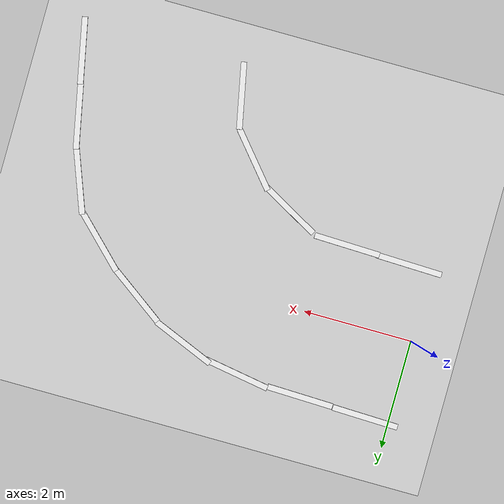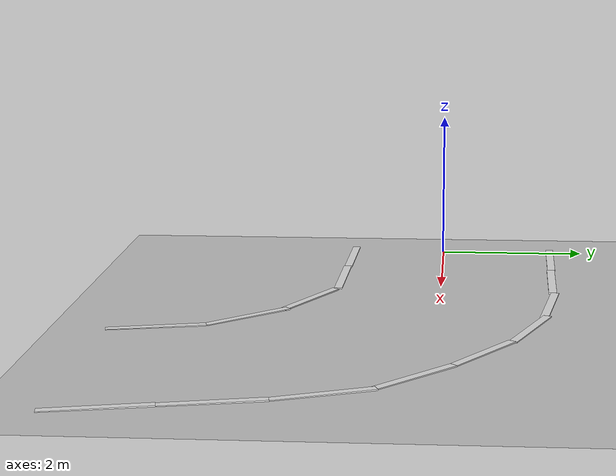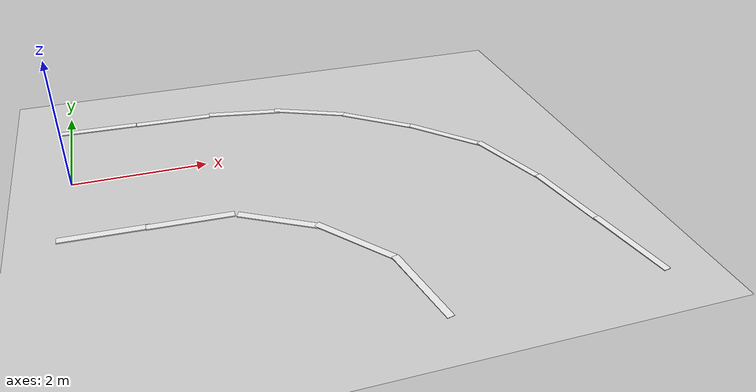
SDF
<sdf version="1.7">
 <world name="default">
  <model name="ground_plane">
   <static>1</static>
   <link name="link">
    <collision name="collision">
     <geometry><plane><normal>0 0 1</normal><size>100 100</size></plane></geometry>
     <surface>
      <contact><collide_bitmask>65535</collide_bitmask></contact>
      <friction><ode><mu>100</mu><mu2>50</mu2></ode></friction>
     </surface>
    </collision>
    <visual name="visual">
     <cast_shadows>0</cast_shadows>
     <geometry><plane><normal>0 0 1</normal><size>100 100</size></plane></geometry>
     <material>
      <script><uri>file://media/materials/scripts/gazebo.material</uri><name>Gazebo/Grey</name></script>
     </material>
    </visual>
   </link>
  </model>
  <model name="road_way">
   <link name="link">
    <inertial>
     <mass>2</mass>
     <inertia>
      <ixx>0.249647</ixx>
      <ixy>0</ixy>
      <ixz>0</ixz>
      <iyy>0.00205142</iyy>
      <iyz>0</iyz>
      <izz>0.251372</izz>
     </inertia>
    </inertial>
    <visual name="visual">
     <geometry><box><size>0.106644 1.22348 0.03129</size></box></geometry>
     <material>
      <script><name>Gazebo/White</name><uri>file://media/materials/scripts/gazebo.material</uri></script>
      <shader type="pixel"><normal_map>__default__</normal_map></shader>
      <ambient>1 1 1 1</ambient>
      <diffuse>1 1 1 1</diffuse>
      <specular>0 0 0 1</specular>
      <emissive>0 0 0 1</emissive>
     </material>
    </visual>
    <collision name="collision">
     <geometry><box><size>0.10644 1.22348 0.03129</size></box></geometry>
     <surface>
      <friction>
       <ode><mu>1</mu><mu2>1</mu2><fdir1>0 0 0</fdir1><slip1>0</slip1><slip2>0</slip2></ode>
       <torsional>
        <coefficient>1</coefficient>
        <patch_radius>0</patch_radius>
        <surface_radius>0</surface_radius>
        <use_patch_radius>1</use_patch_radius>
        <ode><slip>0</slip></ode>
       </torsional>
      </friction>
      <bounce><restitution_coefficient>0</restitution_coefficient><threshold>1e+06</threshold></bounce>
      <contact>
       <collide_without_contact>0</collide_without_contact>
       <collide_without_contact_bitmask>1</collide_without_contact_bitmask>
       <collide_bitmask>1</collide_bitmask>
       <ode>
        <soft_cfm>0</soft_cfm>
        <soft_erp>0.2</soft_erp>
        <kp>1e+13</kp>
        <kd>1</kd>
        <max_vel>0.01</max_vel>
        <min_depth>0</min_depth>
       </ode>
       <bullet>
        <split_impulse>1</split_impulse>
        <split_impulse_penetration_threshold>-0.01</split_impulse_penetration_threshold>
        <soft_cfm>0</soft_cfm>
        <soft_erp>0.2</soft_erp>
        <kp>1e+13</kp>
        <kd>1</kd>
       </bullet>
      </contact>
     </surface>
    </collision>
   </link>
   <static>0</static>
   <pose>0.431084 1.54511 -0.008736 -2.9e-05 0.005942 -1.5984</pose>
  </model>
  <model name="road_way_clone">
   <link name="link">
    <inertial>
     <mass>2</mass>
     <inertia>
      <ixx>0.249647</ixx>
      <ixy>0</ixy>
      <ixz>0</ixz>
      <iyy>0.00205142</iyy>
      <iyz>0</iyz>
      <izz>0.251372</izz>
     </inertia>
    </inertial>
    <visual name="visual">
     <geometry><box><size>0.106644 1.22348 0.03129</size></box></geometry>
     <material>
      <script><name>Gazebo/White</name><uri>file://media/materials/scripts/gazebo.material</uri></script>
      <shader type="pixel"><normal_map>__default__</normal_map></shader>
      <ambient>1 1 1 1</ambient>
      <diffuse>1 1 1 1</diffuse>
      <specular>0 0 0 1</specular>
      <emissive>0 0 0 1</emissive>
     </material>
    </visual>
    <collision name="collision">
     <geometry><box><size>0.10644 1.22348 0.03129</size></box></geometry>
     <surface>
      <friction>
       <ode><mu>1</mu><mu2>1</mu2><fdir1>0 0 0</fdir1><slip1>0</slip1><slip2>0</slip2></ode>
       <torsional>
        <coefficient>1</coefficient>
        <patch_radius>0</patch_radius>
        <surface_radius>0</surface_radius>
        <use_patch_radius>1</use_patch_radius>
        <ode><slip>0</slip></ode>
       </torsional>
      </friction>
      <bounce><restitution_coefficient>0</restitution_coefficient><threshold>1e+06</threshold></bounce>
      <contact>
       <collide_without_contact>0</collide_without_contact>
       <collide_without_contact_bitmask>1</collide_without_contact_bitmask>
       <collide_bitmask>1</collide_bitmask>
       <ode>
        <soft_cfm>0</soft_cfm>
        <soft_erp>0.2</soft_erp>
        <kp>1e+13</kp>
        <kd>1</kd>
        <max_vel>0.01</max_vel>
        <min_depth>0</min_depth>
       </ode>
       <bullet>
        <split_impulse>1</split_impulse>
        <split_impulse_penetration_threshold>-0.01</split_impulse_penetration_threshold>
        <soft_cfm>0</soft_cfm>
        <soft_erp>0.2</soft_erp>
        <kp>1e+13</kp>
        <kd>1</kd>
       </bullet>
      </contact>
     </surface>
    </collision>
   </link>
   <static>0</static>
   <pose>1.66209 1.50191 -0.008736 -2.9e-05 0.005942 -1.5984</pose>
  </model>
  <model name="road_way_clone_0">
   <link name="link">
    <inertial>
     <mass>2</mass>
     <inertia>
      <ixx>0.249647</ixx>
      <ixy>0</ixy>
      <ixz>0</ixz>
      <iyy>0.00205142</iyy>
      <iyz>0</iyz>
      <izz>0.251372</izz>
     </inertia>
    </inertial>
    <visual name="visual">
     <geometry><box><size>0.106644 1.22348 0.03129</size></box></geometry>
     <material>
      <script><name>Gazebo/White</name><uri>file://media/materials/scripts/gazebo.material</uri></script>
      <shader type="pixel"><normal_map>__default__</normal_map></shader>
      <ambient>1 1 1 1</ambient>
      <diffuse>1 1 1 1</diffuse>
      <specular>0 0 0 1</specular>
      <emissive>0 0 0 1</emissive>
     </material>
    </visual>
    <collision name="collision">
     <geometry><box><size>0.10644 1.22348 0.03129</size></box></geometry>
     <surface>
      <friction>
       <ode><mu>1</mu><mu2>1</mu2><fdir1>0 0 0</fdir1><slip1>0</slip1><slip2>0</slip2></ode>
       <torsional>
        <coefficient>1</coefficient>
        <patch_radius>0</patch_radius>
        <surface_radius>0</surface_radius>
        <use_patch_radius>1</use_patch_radius>
        <ode><slip>0</slip></ode>
       </torsional>
      </friction>
      <bounce><restitution_coefficient>0</restitution_coefficient><threshold>1e+06</threshold></bounce>
      <contact>
       <collide_without_contact>0</collide_without_contact>
       <collide_without_contact_bitmask>1</collide_without_contact_bitmask>
       <collide_bitmask>1</collide_bitmask>
       <ode>
        <soft_cfm>0</soft_cfm>
        <soft_erp>0.2</soft_erp>
        <kp>1e+13</kp>
        <kd>1</kd>
        <max_vel>0.01</max_vel>
        <min_depth>0</min_depth>
       </ode>
       <bullet>
        <split_impulse>1</split_impulse>
        <split_impulse_penetration_threshold>-0.01</split_impulse_penetration_threshold>
        <soft_cfm>0</soft_cfm>
        <soft_erp>0.2</soft_erp>
        <kp>1e+13</kp>
        <kd>1</kd>
       </bullet>
      </contact>
     </surface>
    </collision>
   </link>
   <static>0</static>
   <pose>2.87691 1.41323 -0.008974 -0.000849 0.005881 -1.73695</pose>
  </model>
  <model name="road_way_clone_0_clone">
   <link name="link">
    <inertial>
     <mass>2</mass>
     <inertia>
      <ixx>0.249647</ixx>
      <ixy>0</ixy>
      <ixz>0</ixz>
      <iyy>0.00205142</iyy>
      <iyz>0</iyz>
      <izz>0.251372</izz>
     </inertia>
    </inertial>
    <visual name="visual">
     <geometry><box><size>0.106644 1.22348 0.03129</size></box></geometry>
     <material>
      <script><name>Gazebo/White</name><uri>file://media/materials/scripts/gazebo.material</uri></script>
      <shader type="pixel"><normal_map>__default__</normal_map></shader>
      <ambient>1 1 1 1</ambient>
      <diffuse>1 1 1 1</diffuse>
      <specular>0 0 0 1</specular>
      <emissive>0 0 0 1</emissive>
     </material>
    </visual>
    <collision name="collision">
     <geometry><box><size>0.10644 1.22348 0.03129</size></box></geometry>
     <surface>
      <friction>
       <ode><mu>1</mu><mu2>1</mu2><fdir1>0 0 0</fdir1><slip1>0</slip1><slip2>0</slip2></ode>
       <torsional>
        <coefficient>1</coefficient>
        <patch_radius>0</patch_radius>
        <surface_radius>0</surface_radius>
        <use_patch_radius>1</use_patch_radius>
        <ode><slip>0</slip></ode>
       </torsional>
      </friction>
      <bounce><restitution_coefficient>0</restitution_coefficient><threshold>1e+06</threshold></bounce>
      <contact>
       <collide_without_contact>0</collide_without_contact>
       <collide_without_contact_bitmask>1</collide_without_contact_bitmask>
       <collide_bitmask>1</collide_bitmask>
       <ode>
        <soft_cfm>0</soft_cfm>
        <soft_erp>0.2</soft_erp>
        <kp>1e+13</kp>
        <kd>1</kd>
        <max_vel>0.01</max_vel>
        <min_depth>0</min_depth>
       </ode>
       <bullet>
        <split_impulse>1</split_impulse>
        <split_impulse_penetration_threshold>-0.01</split_impulse_penetration_threshold>
        <soft_cfm>0</soft_cfm>
        <soft_erp>0.2</soft_erp>
        <kp>1e+13</kp>
        <kd>1</kd>
       </bullet>
      </contact>
     </surface>
    </collision>
   </link>
   <static>0</static>
   <pose>3.95765 1.12805 -0.010505 -0.002138 0.005544 -1.96162</pose>
  </model>
  <model name="road_way_clone_1">
   <link name="link">
    <inertial>
     <mass>2</mass>
     <inertia>
      <ixx>0.249647</ixx>
      <ixy>0</ixy>
      <ixz>0</ixz>
      <iyy>0.00205142</iyy>
      <iyz>0</iyz>
      <izz>0.251372</izz>
     </inertia>
    </inertial>
    <visual name="visual">
     <geometry><box><size>0.106644 1.22348 0.03129</size></box></geometry>
     <material>
      <script><name>Gazebo/White</name><uri>file://media/materials/scripts/gazebo.material</uri></script>
      <shader type="pixel"><normal_map>__default__</normal_map></shader>
      <ambient>1 1 1 1</ambient>
      <diffuse>1 1 1 1</diffuse>
      <specular>0 0 0 1</specular>
      <emissive>0 0 0 1</emissive>
     </material>
    </visual>
    <collision name="collision">
     <geometry><box><size>0.10644 1.22348 0.03129</size></box></geometry>
     <surface>
      <friction>
       <ode><mu>1</mu><mu2>1</mu2><fdir1>0 0 0</fdir1><slip1>0</slip1><slip2>0</slip2></ode>
       <torsional>
        <coefficient>1</coefficient>
        <patch_radius>0</patch_radius>
        <surface_radius>0</surface_radius>
        <use_patch_radius>1</use_patch_radius>
        <ode><slip>0</slip></ode>
       </torsional>
      </friction>
      <bounce><restitution_coefficient>0</restitution_coefficient><threshold>1e+06</threshold></bounce>
      <contact>
       <collide_without_contact>0</collide_without_contact>
       <collide_without_contact_bitmask>1</collide_without_contact_bitmask>
       <collide_bitmask>1</collide_bitmask>
       <ode>
        <soft_cfm>0</soft_cfm>
        <soft_erp>0.2</soft_erp>
        <kp>1e+13</kp>
        <kd>1</kd>
        <max_vel>0.01</max_vel>
        <min_depth>0</min_depth>
       </ode>
       <bullet>
        <split_impulse>1</split_impulse>
        <split_impulse_penetration_threshold>-0.01</split_impulse_penetration_threshold>
        <soft_cfm>0</soft_cfm>
        <soft_erp>0.2</soft_erp>
        <kp>1e+13</kp>
        <kd>1</kd>
       </bullet>
      </contact>
     </surface>
    </collision>
   </link>
   <static>0</static>
   <pose>0.403234 -1.31676 -0.007594 -2.9e-05 0.005942 -1.5984</pose>
  </model>
  <model name="road_way_clone_2">
   <link name="link">
    <inertial>
     <mass>2</mass>
     <inertia>
      <ixx>0.249647</ixx>
      <ixy>0</ixy>
      <ixz>0</ixz>
      <iyy>0.00205142</iyy>
      <iyz>0</iyz>
      <izz>0.251372</izz>
     </inertia>
    </inertial>
    <visual name="visual">
     <geometry><box><size>0.106644 1.22348 0.03129</size></box></geometry>
     <material>
      <script><name>Gazebo/White</name><uri>file://media/materials/scripts/gazebo.material</uri></script>
      <shader type="pixel"><normal_map>__default__</normal_map></shader>
      <ambient>1 1 1 1</ambient>
      <diffuse>1 1 1 1</diffuse>
      <specular>0 0 0 1</specular>
      <emissive>0 0 0 1</emissive>
     </material>
    </visual>
    <collision name="collision">
     <geometry><box><size>0.10644 1.22348 0.03129</size></box></geometry>
     <surface>
      <friction>
       <ode><mu>1</mu><mu2>1</mu2><fdir1>0 0 0</fdir1><slip1>0</slip1><slip2>0</slip2></ode>
       <torsional>
        <coefficient>1</coefficient>
        <patch_radius>0</patch_radius>
        <surface_radius>0</surface_radius>
        <use_patch_radius>1</use_patch_radius>
        <ode><slip>0</slip></ode>
       </torsional>
      </friction>
      <bounce><restitution_coefficient>0</restitution_coefficient><threshold>1e+06</threshold></bounce>
      <contact>
       <collide_without_contact>0</collide_without_contact>
       <collide_without_contact_bitmask>1</collide_without_contact_bitmask>
       <collide_bitmask>1</collide_bitmask>
       <ode>
        <soft_cfm>0</soft_cfm>
        <soft_erp>0.2</soft_erp>
        <kp>1e+13</kp>
        <kd>1</kd>
        <max_vel>0.01</max_vel>
        <min_depth>0</min_depth>
       </ode>
       <bullet>
        <split_impulse>1</split_impulse>
        <split_impulse_penetration_threshold>-0.01</split_impulse_penetration_threshold>
        <soft_cfm>0</soft_cfm>
        <soft_erp>0.2</soft_erp>
        <kp>1e+13</kp>
        <kd>1</kd>
       </bullet>
      </contact>
     </surface>
    </collision>
   </link>
   <static>0</static>
   <pose>1.57672 -1.35874 -0.007665 -2.9e-05 0.005942 -1.5984</pose>
  </model>
  <model name="road_way_clone_0_clone_1">
   <link name="link">
    <inertial>
     <mass>2</mass>
     <inertia>
      <ixx>0.249647</ixx>
      <ixy>0</ixy>
      <ixz>0</ixz>
      <iyy>0.00205142</iyy>
      <iyz>0</iyz>
      <izz>0.251372</izz>
     </inertia>
    </inertial>
    <visual name="visual">
     <geometry><box><size>0.106644 1.22348 0.03129</size></box></geometry>
     <material>
      <script><name>Gazebo/White</name><uri>file://media/materials/scripts/gazebo.material</uri></script>
      <shader type="pixel"><normal_map>__default__</normal_map></shader>
      <ambient>1 1 1 1</ambient>
      <diffuse>1 1 1 1</diffuse>
      <specular>0 0 0 1</specular>
      <emissive>0 0 0 1</emissive>
     </material>
    </visual>
    <collision name="collision">
     <geometry><box><size>0.10644 1.22348 0.03129</size></box></geometry>
     <surface>
      <friction>
       <ode><mu>1</mu><mu2>1</mu2><fdir1>0 0 0</fdir1><slip1>0</slip1><slip2>0</slip2></ode>
       <torsional>
        <coefficient>1</coefficient>
        <patch_radius>0</patch_radius>
        <surface_radius>0</surface_radius>
        <use_patch_radius>1</use_patch_radius>
        <ode><slip>0</slip></ode>
       </torsional>
      </friction>
      <bounce><restitution_coefficient>0</restitution_coefficient><threshold>1e+06</threshold></bounce>
      <contact>
       <collide_without_contact>0</collide_without_contact>
       <collide_without_contact_bitmask>1</collide_without_contact_bitmask>
       <collide_bitmask>1</collide_bitmask>
       <ode>
        <soft_cfm>0</soft_cfm>
        <soft_erp>0.2</soft_erp>
        <kp>1e+13</kp>
        <kd>1</kd>
        <max_vel>0.01</max_vel>
        <min_depth>0</min_depth>
       </ode>
       <bullet>
        <split_impulse>1</split_impulse>
        <split_impulse_penetration_threshold>-0.01</split_impulse_penetration_threshold>
        <soft_cfm>0</soft_cfm>
        <soft_erp>0.2</soft_erp>
        <kp>1e+13</kp>
        <kd>1</kd>
       </bullet>
      </contact>
     </surface>
    </collision>
   </link>
   <static>0</static>
   <pose>2.75807 -1.69935 -0.008905 -0.002769 0.005258 -2.07828</pose>
  </model>
  <model name="road_way_clone_0_clone_clone">
   <link name="link">
    <inertial>
     <mass>2</mass>
     <inertia>
      <ixx>0.249647</ixx>
      <ixy>0</ixy>
      <ixz>0</ixz>
      <iyy>0.00205142</iyy>
      <iyz>0</iyz>
      <izz>0.251372</izz>
     </inertia>
    </inertial>
    <visual name="visual">
     <geometry><box><size>0.106644 1.22348 0.03129</size></box></geometry>
     <material>
      <script><name>Gazebo/White</name><uri>file://media/materials/scripts/gazebo.material</uri></script>
      <shader type="pixel"><normal_map>__default__</normal_map></shader>
      <ambient>1 1 1 1</ambient>
      <diffuse>1 1 1 1</diffuse>
      <specular>0 0 0 1</specular>
      <emissive>0 0 0 1</emissive>
     </material>
    </visual>
    <collision name="collision">
     <geometry><box><size>0.10644 1.22348 0.03129</size></box></geometry>
     <surface>
      <friction>
       <ode><mu>1</mu><mu2>1</mu2><fdir1>0 0 0</fdir1><slip1>0</slip1><slip2>0</slip2></ode>
       <torsional>
        <coefficient>1</coefficient>
        <patch_radius>0</patch_radius>
        <surface_radius>0</surface_radius>
        <use_patch_radius>1</use_patch_radius>
        <ode><slip>0</slip></ode>
       </torsional>
      </friction>
      <bounce><restitution_coefficient>0</restitution_coefficient><threshold>1e+06</threshold></bounce>
      <contact>
       <collide_without_contact>0</collide_without_contact>
       <collide_without_contact_bitmask>1</collide_without_contact_bitmask>
       <collide_bitmask>1</collide_bitmask>
       <ode>
        <soft_cfm>0</soft_cfm>
        <soft_erp>0.2</soft_erp>
        <kp>1e+13</kp>
        <kd>1</kd>
        <max_vel>0.01</max_vel>
        <min_depth>0</min_depth>
       </ode>
       <bullet>
        <split_impulse>1</split_impulse>
        <split_impulse_penetration_threshold>-0.01</split_impulse_penetration_threshold>
        <soft_cfm>0</soft_cfm>
        <soft_erp>0.2</soft_erp>
        <kp>1e+13</kp>
        <kd>1</kd>
       </bullet>
      </contact>
     </surface>
    </collision>
   </link>
   <static>0</static>
   <pose>3.61851 -2.39475 -0.012542 -0.004454 0.003933 -2.44103</pose>
  </model>
  <model name="road_way_clone_0_clone_clone_0">
   <link name="link">
    <inertial>
     <mass>2</mass>
     <inertia>
      <ixx>0.249647</ixx>
      <ixy>0</ixy>
      <ixz>0</ixz>
      <iyy>0.00205142</iyy>
      <iyz>0</iyz>
      <izz>0.251372</izz>
     </inertia>
    </inertial>
    <visual name="visual">
     <geometry><box><size>0.106644 1.22348 0.03129</size></box></geometry>
     <material>
      <script><name>Gazebo/White</name><uri>file://media/materials/scripts/gazebo.material</uri></script>
      <shader type="pixel"><normal_map>__default__</normal_map></shader>
      <ambient>1 1 1 1</ambient>
      <diffuse>1 1 1 1</diffuse>
      <specular>0 0 0 1</specular>
      <emissive>0 0 0 1</emissive>
     </material>
    </visual>
    <collision name="collision">
     <geometry><box><size>0.10644 1.22348 0.03129</size></box></geometry>
     <surface>
      <friction>
       <ode><mu>1</mu><mu2>1</mu2><fdir1>0 0 0</fdir1><slip1>0</slip1><slip2>0</slip2></ode>
       <torsional>
        <coefficient>1</coefficient>
        <patch_radius>0</patch_radius>
        <surface_radius>0</surface_radius>
        <use_patch_radius>1</use_patch_radius>
        <ode><slip>0</slip></ode>
       </torsional>
      </friction>
      <bounce><restitution_coefficient>0</restitution_coefficient><threshold>1e+06</threshold></bounce>
      <contact>
       <collide_without_contact>0</collide_without_contact>
       <collide_without_contact_bitmask>1</collide_without_contact_bitmask>
       <collide_bitmask>1</collide_bitmask>
       <ode>
        <soft_cfm>0</soft_cfm>
        <soft_erp>0.2</soft_erp>
        <kp>1e+13</kp>
        <kd>1</kd>
        <max_vel>0.01</max_vel>
        <min_depth>0</min_depth>
       </ode>
       <bullet>
        <split_impulse>1</split_impulse>
        <split_impulse_penetration_threshold>-0.01</split_impulse_penetration_threshold>
        <soft_cfm>0</soft_cfm>
        <soft_erp>0.2</soft_erp>
        <kp>1e+13</kp>
        <kd>1</kd>
       </bullet>
      </contact>
     </surface>
    </collision>
   </link>
   <static>0</static>
   <pose>5.00171 0.532634 -0.010505 -0.003349 0.004909 -2.19222</pose>
  </model>
  <model name="road_way_clone_0_clone_clone_2">
   <link name="link">
    <inertial>
     <mass>2</mass>
     <inertia>
      <ixx>0.249647</ixx>
      <ixy>0</ixy>
      <ixz>0</ixz>
      <iyy>0.00205142</iyy>
      <iyz>0</iyz>
      <izz>0.251372</izz>
     </inertia>
    </inertial>
    <visual name="visual">
     <geometry><box><size>0.106644 1.22348 0.03129</size></box></geometry>
     <material>
      <script><name>Gazebo/White</name><uri>file://media/materials/scripts/gazebo.material</uri></script>
      <shader type="pixel"><normal_map>__default__</normal_map></shader>
      <ambient>1 1 1 1</ambient>
      <diffuse>1 1 1 1</diffuse>
      <specular>0 0 0 1</specular>
      <emissive>0 0 0 1</emissive>
     </material>
    </visual>
    <collision name="collision">
     <geometry><box><size>0.10644 1.22348 0.03129</size></box></geometry>
     <surface>
      <friction>
       <ode><mu>1</mu><mu2>1</mu2><fdir1>0 0 0</fdir1><slip1>0</slip1><slip2>0</slip2></ode>
       <torsional>
        <coefficient>1</coefficient>
        <patch_radius>0</patch_radius>
        <surface_radius>0</surface_radius>
        <use_patch_radius>1</use_patch_radius>
        <ode><slip>0</slip></ode>
       </torsional>
      </friction>
      <bounce><restitution_coefficient>0</restitution_coefficient><threshold>1e+06</threshold></bounce>
      <contact>
       <collide_without_contact>0</collide_without_contact>
       <collide_without_contact_bitmask>1</collide_without_contact_bitmask>
       <collide_bitmask>1</collide_bitmask>
       <ode>
        <soft_cfm>0</soft_cfm>
        <soft_erp>0.2</soft_erp>
        <kp>1e+13</kp>
        <kd>1</kd>
        <max_vel>0.01</max_vel>
        <min_depth>0</min_depth>
       </ode>
       <bullet>
        <split_impulse>1</split_impulse>
        <split_impulse_penetration_threshold>-0.01</split_impulse_penetration_threshold>
        <soft_cfm>0</soft_cfm>
        <soft_erp>0.2</soft_erp>
        <kp>1e+13</kp>
        <kd>1</kd>
       </bullet>
      </contact>
     </surface>
    </collision>
   </link>
   <static>0</static>
   <pose>5.90401 -0.221652 -0.011445 -0.004069 0.00433 -2.34793</pose>
  </model>
  <model name="road_way_clone_0_clone_clone_3">
   <link name="link">
    <inertial>
     <mass>2</mass>
     <inertia>
      <ixx>0.249647</ixx>
      <ixy>0</ixy>
      <ixz>0</ixz>
      <iyy>0.00205142</iyy>
      <iyz>0</iyz>
      <izz>0.251372</izz>
     </inertia>
    </inertial>
    <visual name="visual">
     <geometry><box><size>0.106644 1.22348 0.03129</size></box></geometry>
     <material>
      <script><name>Gazebo/White</name><uri>file://media/materials/scripts/gazebo.material</uri></script>
      <shader type="pixel"><normal_map>__default__</normal_map></shader>
      <ambient>1 1 1 1</ambient>
      <diffuse>1 1 1 1</diffuse>
      <specular>0 0 0 1</specular>
      <emissive>0 0 0 1</emissive>
     </material>
    </visual>
    <collision name="collision">
     <geometry><box><size>0.10644 1.22348 0.03129</size></box></geometry>
     <surface>
      <friction>
       <ode><mu>1</mu><mu2>1</mu2><fdir1>0 0 0</fdir1><slip1>0</slip1><slip2>0</slip2></ode>
       <torsional>
        <coefficient>1</coefficient>
        <patch_radius>0</patch_radius>
        <surface_radius>0</surface_radius>
        <use_patch_radius>1</use_patch_radius>
        <ode><slip>0</slip></ode>
       </torsional>
      </friction>
      <bounce><restitution_coefficient>0</restitution_coefficient><threshold>1e+06</threshold></bounce>
      <contact>
       <collide_without_contact>0</collide_without_contact>
       <collide_without_contact_bitmask>1</collide_without_contact_bitmask>
       <collide_bitmask>1</collide_bitmask>
       <ode>
        <soft_cfm>0</soft_cfm>
        <soft_erp>0.2</soft_erp>
        <kp>1e+13</kp>
        <kd>1</kd>
        <max_vel>0.01</max_vel>
        <min_depth>0</min_depth>
       </ode>
       <bullet>
        <split_impulse>1</split_impulse>
        <split_impulse_penetration_threshold>-0.01</split_impulse_penetration_threshold>
        <soft_cfm>0</soft_cfm>
        <soft_erp>0.2</soft_erp>
        <kp>1e+13</kp>
        <kd>1</kd>
       </bullet>
      </contact>
     </surface>
    </collision>
   </link>
   <static>0</static>
   <pose>6.54964 -1.18329 -0.011961 -0.005514 0.002214 -2.78258</pose>
  </model>
  <model name="road_way_clone_0_clone_clone_1_clone">
   <link name="link">
    <inertial>
     <mass>2</mass>
     <inertia>
      <ixx>0.249647</ixx>
      <ixy>0</ixy>
      <ixz>0</ixz>
      <iyy>0.00205142</iyy>
      <iyz>0</iyz>
      <izz>0.251372</izz>
     </inertia>
    </inertial>
    <visual name="visual">
     <geometry><box><size>0.106644 1.22348 0.03129</size></box></geometry>
     <material>
      <script><name>Gazebo/White</name><uri>file://media/materials/scripts/gazebo.material</uri></script>
      <shader type="pixel"><normal_map>__default__</normal_map></shader>
      <ambient>1 1 1 1</ambient>
      <diffuse>1 1 1 1</diffuse>
      <specular>0 0 0 1</specular>
      <emissive>0 0 0 1</emissive>
     </material>
    </visual>
    <collision name="collision">
     <geometry><box><size>0.10644 1.22348 0.03129</size></box></geometry>
     <surface>
      <friction>
       <ode><mu>1</mu><mu2>1</mu2><fdir1>0 0 0</fdir1><slip1>0</slip1><slip2>0</slip2></ode>
       <torsional>
        <coefficient>1</coefficient>
        <patch_radius>0</patch_radius>
        <surface_radius>0</surface_radius>
        <use_patch_radius>1</use_patch_radius>
        <ode><slip>0</slip></ode>
       </torsional>
      </friction>
      <bounce><restitution_coefficient>0</restitution_coefficient><threshold>1e+06</threshold></bounce>
      <contact>
       <collide_without_contact>0</collide_without_contact>
       <collide_without_contact_bitmask>1</collide_without_contact_bitmask>
       <collide_bitmask>1</collide_bitmask>
       <ode>
        <soft_cfm>0</soft_cfm>
        <soft_erp>0.2</soft_erp>
        <kp>1e+13</kp>
        <kd>1</kd>
        <max_vel>0.01</max_vel>
        <min_depth>0</min_depth>
       </ode>
       <bullet>
        <split_impulse>1</split_impulse>
        <split_impulse_penetration_threshold>-0.01</split_impulse_penetration_threshold>
        <soft_cfm>0</soft_cfm>
        <soft_erp>0.2</soft_erp>
        <kp>1e+13</kp>
        <kd>1</kd>
       </bullet>
      </contact>
     </surface>
    </collision>
   </link>
   <static>0</static>
   <pose>6.88079 -2.31425 -0.012528 -0.005792 0.001324 -2.93966</pose>
  </model>
  <model name="road_way_clone_0_clone_clone_1_clone_clone_0">
   <link name="link">
    <inertial>
     <mass>2</mass>
     <inertia>
      <ixx>0.249647</ixx>
      <ixy>0</ixy>
      <ixz>0</ixz>
      <iyy>0.00205142</iyy>
      <iyz>0</iyz>
      <izz>0.251372</izz>
     </inertia>
    </inertial>
    <visual name="visual">
     <geometry><box><size>0.106644 1.22348 0.03129</size></box></geometry>
     <material>
      <script><name>Gazebo/White</name><uri>file://media/materials/scripts/gazebo.material</uri></script>
      <shader type="pixel"><normal_map>__default__</normal_map></shader>
      <ambient>1 1 1 1</ambient>
      <diffuse>1 1 1 1</diffuse>
      <specular>0 0 0 1</specular>
      <emissive>0 0 0 1</emissive>
     </material>
    </visual>
    <collision name="collision">
     <geometry><box><size>0.10644 1.22348 0.03129</size></box></geometry>
     <surface>
      <friction>
       <ode><mu>1</mu><mu2>1</mu2><fdir1>0 0 0</fdir1><slip1>0</slip1><slip2>0</slip2></ode>
       <torsional>
        <coefficient>1</coefficient>
        <patch_radius>0</patch_radius>
        <surface_radius>0</surface_radius>
        <use_patch_radius>1</use_patch_radius>
        <ode><slip>0</slip></ode>
       </torsional>
      </friction>
      <bounce><restitution_coefficient>0</restitution_coefficient><threshold>1e+06</threshold></bounce>
      <contact>
       <collide_without_contact>0</collide_without_contact>
       <collide_without_contact_bitmask>1</collide_without_contact_bitmask>
       <collide_bitmask>1</collide_bitmask>
       <ode>
        <soft_cfm>0</soft_cfm>
        <soft_erp>0.2</soft_erp>
        <kp>1e+13</kp>
        <kd>1</kd>
        <max_vel>0.01</max_vel>
        <min_depth>0</min_depth>
       </ode>
       <bullet>
        <split_impulse>1</split_impulse>
        <split_impulse_penetration_threshold>-0.01</split_impulse_penetration_threshold>
        <soft_cfm>0</soft_cfm>
        <soft_erp>0.2</soft_erp>
        <kp>1e+13</kp>
        <kd>1</kd>
       </bullet>
      </contact>
     </surface>
    </collision>
   </link>
   <static>0</static>
   <pose>7.12211 -3.4658 -0.012528 -0.005792 0.001324 -2.93966</pose>
  </model>
  <model name="road_way_clone_0_clone_clone_1_clone_clone_clone">
   <link name="link">
    <inertial>
     <mass>2</mass>
     <inertia>
      <ixx>0.249647</ixx>
      <ixy>0</ixy>
      <ixz>0</ixz>
      <iyy>0.00205142</iyy>
      <iyz>0</iyz>
      <izz>0.251372</izz>
     </inertia>
    </inertial>
    <visual name="visual">
     <geometry><box><size>0.106644 1.22348 0.03129</size></box></geometry>
     <material>
      <script><name>Gazebo/White</name><uri>file://media/materials/scripts/gazebo.material</uri></script>
      <shader type="pixel"><normal_map>__default__</normal_map></shader>
      <ambient>1 1 1 1</ambient>
      <diffuse>1 1 1 1</diffuse>
      <specular>0 0 0 1</specular>
      <emissive>0 0 0 1</emissive>
     </material>
    </visual>
    <collision name="collision">
     <geometry><box><size>0.10644 1.22348 0.03129</size></box></geometry>
     <surface>
      <friction>
       <ode><mu>1</mu><mu2>1</mu2><fdir1>0 0 0</fdir1><slip1>0</slip1><slip2>0</slip2></ode>
       <torsional>
        <coefficient>1</coefficient>
        <patch_radius>0</patch_radius>
        <surface_radius>0</surface_radius>
        <use_patch_radius>1</use_patch_radius>
        <ode><slip>0</slip></ode>
       </torsional>
      </friction>
      <bounce><restitution_coefficient>0</restitution_coefficient><threshold>1e+06</threshold></bounce>
      <contact>
       <collide_without_contact>0</collide_without_contact>
       <collide_without_contact_bitmask>1</collide_without_contact_bitmask>
       <collide_bitmask>1</collide_bitmask>
       <ode>
        <soft_cfm>0</soft_cfm>
        <soft_erp>0.2</soft_erp>
        <kp>1e+13</kp>
        <kd>1</kd>
        <max_vel>0.01</max_vel>
        <min_depth>0</min_depth>
       </ode>
       <bullet>
        <split_impulse>1</split_impulse>
        <split_impulse_penetration_threshold>-0.01</split_impulse_penetration_threshold>
        <soft_cfm>0</soft_cfm>
        <soft_erp>0.2</soft_erp>
        <kp>1e+13</kp>
        <kd>1</kd>
       </bullet>
      </contact>
     </surface>
    </collision>
   </link>
   <static>0</static>
   <pose>4.13745 -3.4498 -0.014882 -0.005792 0.001324 -2.93966</pose>
  </model>
 </world>
</sdf>
